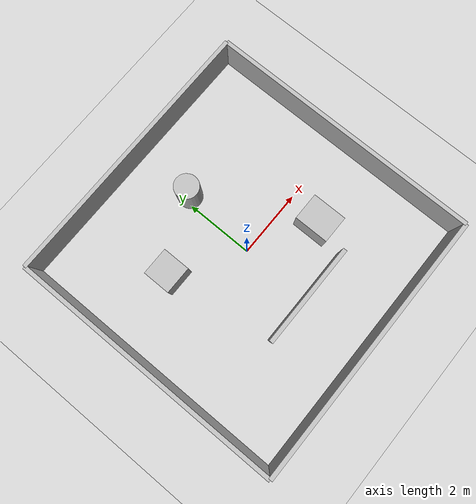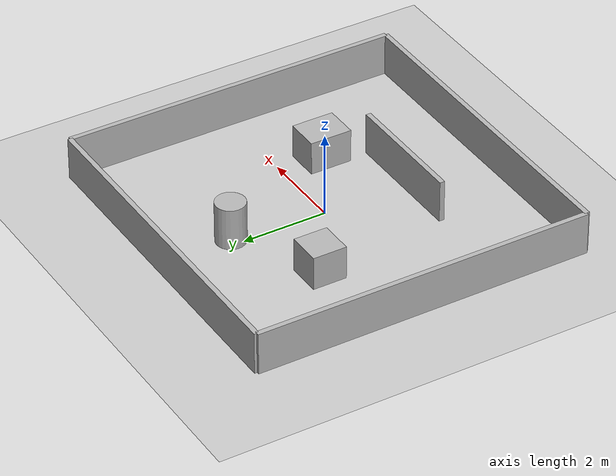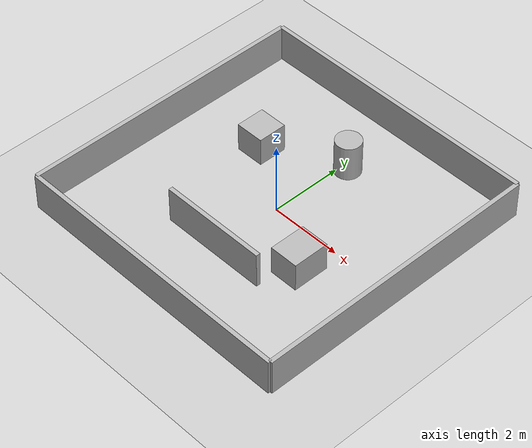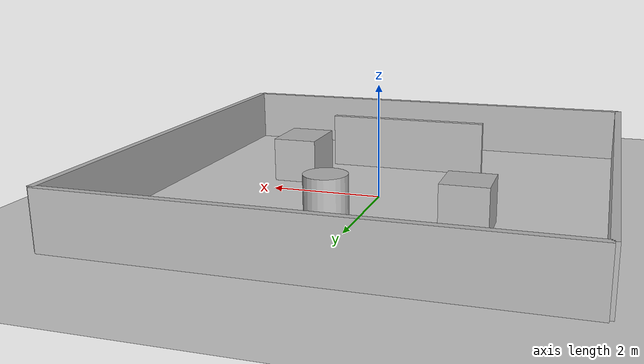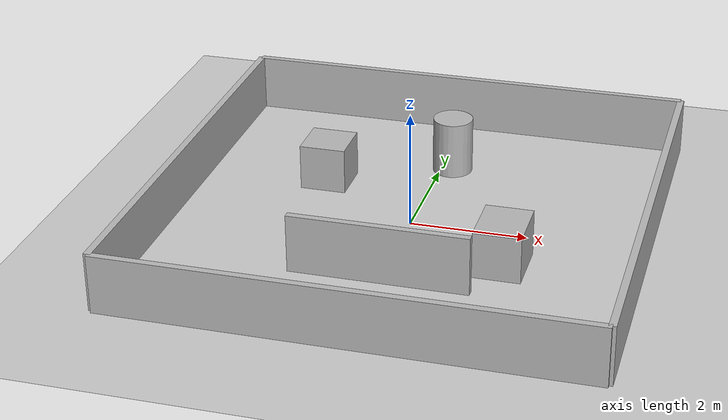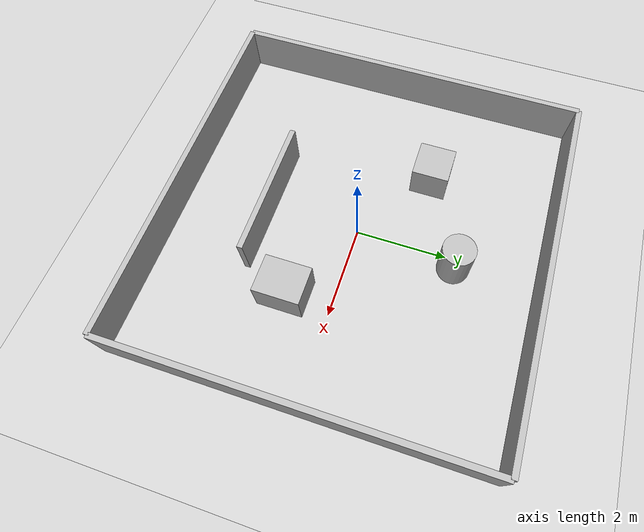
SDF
<?xml version="1.0" ?>
<sdf version="1.6">
  <world name="tb3_indoor_obstacles">
    <plugin name="gazebo_ros_init" filename="libgazebo_ros_init.so"/>
    <plugin name="gazebo_ros_factory" filename="libgazebo_ros_factory.so"/>

    <include>
      <uri>model://sun</uri>
    </include>

    <include>
      <uri>model://ground_plane</uri>
    </include>

    <model name="wall_north">
      <static>true</static>
      <pose>0 4 0.5 0 0 0</pose>
      <link name="link"><collision name="c"><geometry><box><size>8 0.12 1</size></box></geometry></collision><visual name="v"><geometry><box><size>8 0.12 1</size></box></geometry></visual></link>
    </model>

    <model name="wall_south">
      <static>true</static>
      <pose>0 -4 0.5 0 0 0</pose>
      <link name="link"><collision name="c"><geometry><box><size>8 0.12 1</size></box></geometry></collision><visual name="v"><geometry><box><size>8 0.12 1</size></box></geometry></visual></link>
    </model>

    <model name="wall_east">
      <static>true</static>
      <pose>4 0 0.5 0 0 0</pose>
      <link name="link"><collision name="c"><geometry><box><size>0.12 8 1</size></box></geometry></collision><visual name="v"><geometry><box><size>0.12 8 1</size></box></geometry></visual></link>
    </model>

    <model name="wall_west">
      <static>true</static>
      <pose>-4 0 0.5 0 0 0</pose>
      <link name="link"><collision name="c"><geometry><box><size>0.12 8 1</size></box></geometry></collision><visual name="v"><geometry><box><size>0.12 8 1</size></box></geometry></visual></link>
    </model>

    <model name="box_1">
      <static>true</static>
      <pose>-1.8 1.2 0.4 0 0 0</pose>
      <link name="link"><collision name="c"><geometry><box><size>0.8 0.8 0.8</size></box></geometry></collision><visual name="v"><geometry><box><size>0.8 0.8 0.8</size></box></geometry></visual></link>
    </model>

    <model name="box_2">
      <static>true</static>
      <pose>1.8 -1.0 0.4 0 0 0</pose>
      <link name="link"><collision name="c"><geometry><box><size>0.8 1.0 0.8</size></box></geometry></collision><visual name="v"><geometry><box><size>0.8 1.0 0.8</size></box></geometry></visual></link>
    </model>

    <model name="pillar_1">
      <static>true</static>
      <pose>0.2 2.2 0.5 0 0 0</pose>
      <link name="link"><collision name="c"><geometry><cylinder><radius>0.35</radius><length>1.0</length></cylinder></geometry></collision><visual name="v"><geometry><cylinder><radius>0.35</radius><length>1.0</length></cylinder></geometry></visual></link>
    </model>

    <model name="inner_wall">
      <static>true</static>
      <pose>0 -2.0 0.5 0 0 0</pose>
      <link name="link"><collision name="c"><geometry><box><size>3.0 0.12 1</size></box></geometry></collision><visual name="v"><geometry><box><size>3.0 0.12 1</size></box></geometry></visual></link>
    </model>
  </world>
</sdf>
